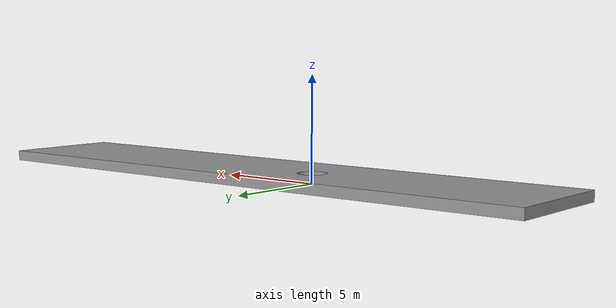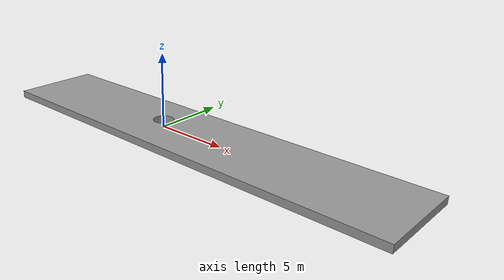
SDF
<?xml version="1.0" ?>
<sdf version="1.5">
  <model name="wall_with_hole">
    <!-- Define como estático (1/true) para a parede ficar fixa no chão e não cair com a gravidade -->
    <static>true</static>

    <link name="link">
      <pose>0 0 0 0 0 0</pose>

      <!-- GEOMETRIA DE COLISÃO (FÍSICA) -->
      <!-- Usar a malha STL garante que o buraco seja físico e o drone passe por ele -->
      <collision name="collision">
        <geometry>
          <mesh>
            <uri>model://wall_with_hole/meshes/wall_with_hole.stl</uri>
            <!-- Se o modelo exportado do CAD estiver em milímetros e ficar gigante, altere para: 0.001 0.001 0.001 -->
            <scale>0.001 0.001 0.001</scale>
          </mesh>
        </geometry>
        <surface>
          <contact>
            <ode>
              <kp>100000.0</kp>
              <kd>100.0</kd>
              <max_vel>0.01</max_vel>
              <min_depth>0.001</min_depth>
            </ode>
          </contact>
          <friction>
            <ode>
              <mu>0.8</mu>
              <mu2>0.8</mu2>
            </ode>
          </friction>
        </surface>
      </collision>

      <!-- GEOMETRIA VISUAL (RENDERIZAÇÃO NO RVIZ / GAZEBO) -->
      <visual name="visual">
        <geometry>
          <mesh>
            <uri>model://wall_with_hole/meshes/wall_with_hole.stl</uri>
            <scale>0.001 0.001 0.001</scale>
          </mesh>
        </geometry>

        <!-- Cor cinza concreta padrão do Gazebo para a parede -->
        <material>
          <script>
            <uri>file://media/materials/scripts/gazebo.material</uri>
            <name>Gazebo/Grey</name>
          </script>
        </material>
      </visual>

    </link>
  </model>
</sdf>
